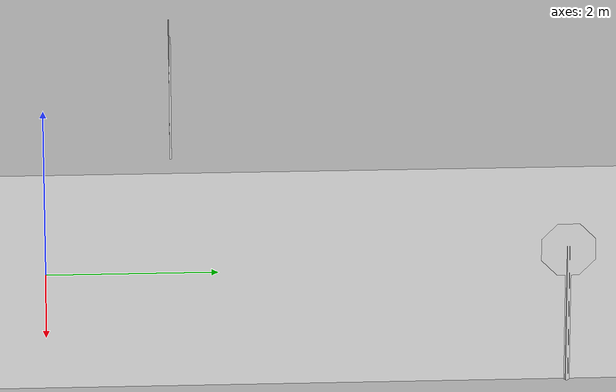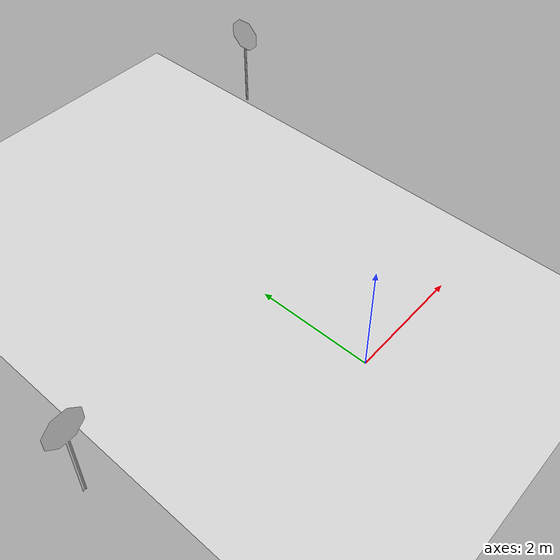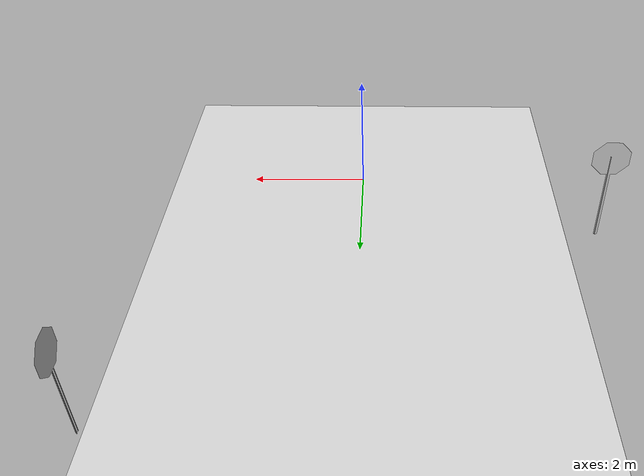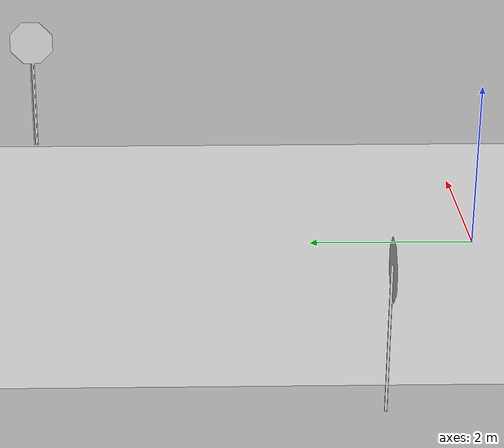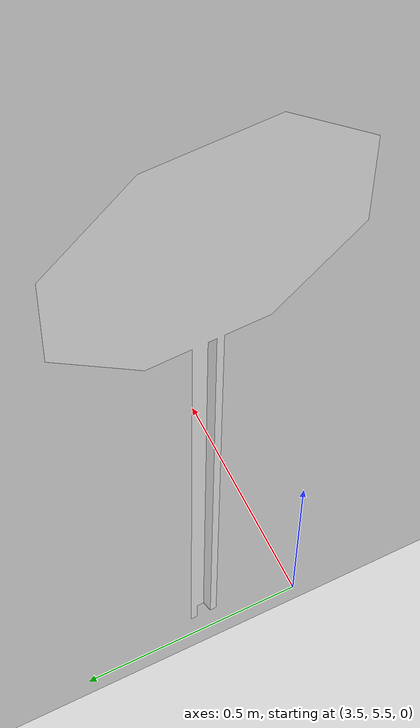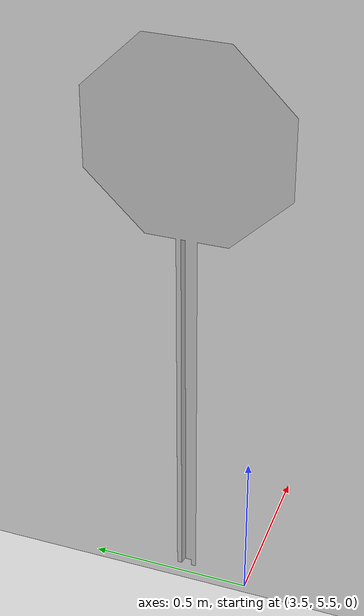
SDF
<sdf version="1.6">
 <world name="default">
  <light name="sun" type="directional">
   <pose>0 0 10 0 -0 0</pose>
   <diffuse>0.8 0.8 0.8 1</diffuse>
   <specular>0.2 0.2 0.2 1</specular>
   <attenuation>
    <range>1000</range>
    <constant>0.9</constant>
    <linear>0.01</linear>
    <quadratic>0.001</quadratic>
   </attenuation>
   <direction>-0.5 0.1 -0.9</direction>
  </light>
  <model name="conde_world">
   <static>1</static>
   <link name="link_ground">
    <collision name="collision">
     <geometry><plane><normal>0 0 1</normal><size>6.95 16.7</size></plane></geometry>
     <surface><friction><ode><mu>100</mu><mu2>50</mu2></ode></friction></surface>
    </collision>
    <visual name="visual_ground">
     <cast_shadows>0</cast_shadows>
     <geometry><plane><normal>0 0 1</normal><size>6.95 16.7</size></plane></geometry>
     <material>
      <script>
       <uri>model://my_ground_plane/materials/scripts</uri>
       <uri>model://my_ground_plane/materials/textures</uri>
       <name>MyGroundPlane/Image</name>
      </script>
     </material>
    </visual>
    <velocity_decay><linear>0</linear><angular>0</angular></velocity_decay>
   </link>
  </model>
  <gravity>0 0 -9.8</gravity>
  <magnetic_field>6e-06 2.3e-05 -4.2e-05</magnetic_field>
  <atmosphere type="adiabatic"/>
  <physics name="default_physics" default="0" type="ode">
   <max_step_size>0.001</max_step_size>
   <real_time_factor>1</real_time_factor>
   <real_time_update_rate>1000</real_time_update_rate>
  </physics>
  <scene><ambient>0.4 0.4 0.4 1</ambient><background>0.7 0.7 0.7 1</background><shadows>1</shadows></scene>
  <audio><device>default</device></audio>
  <spherical_coordinates>
   <surface_model>EARTH_WGS84</surface_model>
   <latitude_deg>0</latitude_deg>
   <longitude_deg>0</longitude_deg>
   <elevation>0</elevation>
   <heading_deg>0</heading_deg>
  </spherical_coordinates>
  <model name="Stop Sign">
   <static>1</static>
   <link name="link">
    <collision name="collision">
     <geometry><mesh><uri>model://stop_sign/meshes/stop_sign.dae</uri></mesh></geometry>
    </collision>
    <visual name="visual">
     <geometry><mesh><uri>model://stop_sign/meshes/stop_sign.dae</uri></mesh></geometry>
     <material>
      <script>
       <uri>model://stop_sign/materials/scripts</uri>
       <uri>model://stop_sign/materials/textures</uri>
       <name>StopSign/Diffuse</name>
      </script>
     </material>
    </visual>
   </link>
   <pose>3.5431 5.70629 0 0 0 -1.56193</pose>
  </model>
  <light name="user_point_light_0" type="point">
   <pose>3.8636 5.80741 1 0 -0 0</pose>
   <diffuse>0.5 0.5 0.5 1</diffuse>
   <specular>0.1 0.1 0.1 1</specular>
   <attenuation>
    <range>20</range>
    <constant>0.5</constant>
    <linear>0.01</linear>
    <quadratic>0.001</quadratic>
   </attenuation>
   <cast_shadows>0</cast_shadows>
   <direction>0 0 -1</direction>
  </light>
  <model name="Stop Sign_0">
   <static>1</static>
   <link name="link">
    <collision name="collision">
     <geometry><mesh><uri>model://stop_sign/meshes/stop_sign.dae</uri></mesh></geometry>
    </collision>
    <visual name="visual">
     <geometry><mesh><uri>model://stop_sign/meshes/stop_sign.dae</uri></mesh></geometry>
     <material>
      <script>
       <uri>model://speed_limit/materials/scripts</uri>
       <uri>model://speed_limit/materials/textures</uri>
       <name>StopSign/Diffuse</name>
      </script>
     </material>
    </visual>
   </link>
   <pose>-3.99034 1.54462 0 0 -0 0</pose>
  </model>
  <light name="user_point_light_1" type="point">
   <pose>-4.06173 1.6735 1 0 -0 0</pose>
   <diffuse>0.5 0.5 0.5 1</diffuse>
   <specular>0.1 0.1 0.1 1</specular>
   <attenuation>
    <range>20</range>
    <constant>0.5</constant>
    <linear>0.01</linear>
    <quadratic>0.001</quadratic>
   </attenuation>
   <cast_shadows>0</cast_shadows>
   <direction>0 0 -1</direction>
  </light>
 </world>
</sdf>
